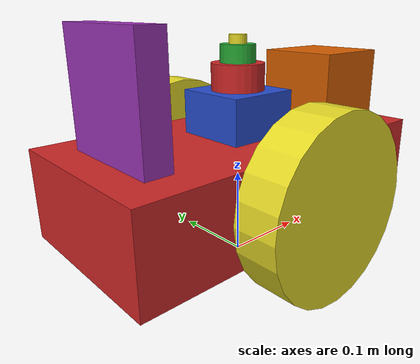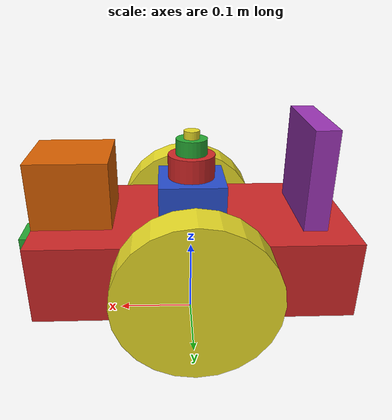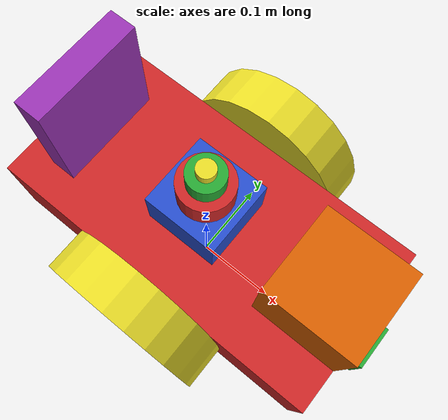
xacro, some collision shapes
<?xml version='1.0'?>

<robot name="my_robot" xmlns:xacro="http://www.ros.org/wiki/xacro">
  <xacro:include filename="$(find my_robot)/urdf/my_robot.gazebo" />

  <link name="robot_footprint"></link>

  <joint name="robot_footprint_joint" type="fixed">
    <origin xyz="0 0 0" rpy="0 0 0" />
    <parent link="robot_footprint"/>
    <child link="chassis" />
  </joint>

  <link name='chassis'>
    <pose>0 0 0.1 0 0 0</pose>

    <inertial>
      <mass value="15.0"/>
      <origin xyz="0.0 0 0.1" rpy=" 0 0 0"/>
      <inertia
          ixx="0.1" ixy="0" ixz="0"
          iyy="0.1" iyz="0"
          izz="0.1"
      />
    </inertial>

    <collision name='collision'>
      <origin xyz="0 0 0.1" rpy=" 0 0 0"/>
      <geometry>
        <box size=".4 .2 .1"/>
      </geometry>
    </collision>

    <visual name='chassis_visual'>
      <origin xyz="0 0 0.1" rpy=" 0 0 0"/>
      <geometry>
        <box size=".4 .2 .1"/>
      </geometry>
    </visual>

    <collision name='back_caster_collision'>
      <origin xyz="-0.125 0 0.05" rpy=" 0 0 0"/>
      <geometry>
        <sphere radius="0.0499"/>
      </geometry>
    </collision>

    <visual name='back_caster_visual'>
      <origin xyz="-0.125 0 0.05" rpy=" 0 0 0"/>
      <geometry>
        <sphere radius="0.05"/>
      </geometry>
    </visual>

    <collision name='front_caster_collision'>
      <origin xyz="0.125 0 0.05" rpy=" 0 0 0"/>
      <geometry>
        <sphere radius="0.0499"/>
      </geometry>
    </collision>

    <visual name='front_caster_visual'>
      <origin xyz="0.125 0 0.05" rpy=" 0 0 0"/>
      <geometry>
        <sphere radius="0.05"/>
      </geometry>
    </visual>

  </link>

  <link name='left_wheel'>
    <pose>0 0 0 1.57 0 0</pose>

    <inertial>
      <mass value="5.0"/>
      <origin xyz="0 0 0" rpy=" 1.57 0 0"/>
      <inertia
          ixx="0.1" ixy="0" ixz="0"
          iyy="0.1" iyz="0"
          izz="0.1"
      />
    </inertial>

    <collision name='collision'>
      <origin xyz="0 0 0" rpy=" 1.57 0 0"/>
      <geometry>
        <cylinder radius="0.1" length="0.05"/>
      </geometry>
    </collision>

    <visual name='left_wheel_visual'>
      <origin xyz="0 0 0" rpy=" 1.57 0 0"/>
      <geometry>
        <cylinder radius="0.1" length="0.05"/>
      </geometry>
    </visual>

  </link>

  <link name='right_wheel'>
    <pose>0 0 0 1.57 0 0</pose>

    <inertial>
      <mass value="5.0"/>
      <origin xyz="0 0 0" rpy=" 1.57 0 0"/>
      <inertia
          ixx="0.1" ixy="0" ixz="0"
          iyy="0.1" iyz="0"
          izz="0.1"
      />
    </inertial>

    <collision name='collision'>
      <origin xyz="0 0 0" rpy=" 1.57 0 0"/>
      <geometry>
        <cylinder radius="0.1" length="0.05"/>
      </geometry>
    </collision>

    <visual name='right_wheel_visual'>
      <origin xyz="0 0 0" rpy=" 1.57 0 0"/>
      <geometry>
        <cylinder radius="0.1" length="0.05"/>
      </geometry>
    </visual>
  </link>

  <joint type="continuous" name="left_wheel_hinge">
    <origin xyz="0 -0.125 0.1" rpy="0 0 0"/>
    <child link="left_wheel"/>
    <parent link="chassis"/>
    <axis xyz="0 1 0" rpy="0 0 0"/>
    <limit effort="10000" velocity="1000"/>
    <dynamics damping="1.0" friction="1.0"/>
  </joint>

  <joint type="continuous" name="right_wheel_hinge">
    <origin xyz="0 0.125 0.1" rpy="0 0 0"/>
    <child link="right_wheel"/>
    <parent link="chassis"/>
    <axis xyz="0 1 0" rpy="0 0 0"/>
    <limit effort="10000" velocity="1000"/>
    <dynamics damping="1.0" friction="1.0"/>
  </joint>

  <link name='camera'>
    <pose>0 0 0 0 0 0</pose>

    <inertial>
      <mass value="0.1"/>
      <origin xyz="0 0 0" rpy=" 0 0 0"/>
      <inertia
          ixx="1e-6" ixy="0" ixz="0"
          iyy="1e-6" iyz="0"
          izz="1e-6"
      />
    </inertial>

    <collision name='collision'>
      <origin xyz="0 0 0" rpy=" 0 0 0"/>
      <geometry>
        <box size=".05 .05 .05"/>
      </geometry>
    </collision>

    <visual name='camera_visual'>
      <origin xyz="0 0 0" rpy=" 0 0 0"/>
      <geometry>
        <box size=".05 .05 .05"/>
      </geometry>
    </visual>

  </link>

  <joint type="fixed" name="camera_mount">
    <origin xyz="0.2 0 0.1" rpy="0 0 0"/>
    <child link="camera"/>
    <parent link="chassis"/>
    <axis xyz="0 1 0" rpy="0 0 0"/>
  </joint>

  <link name='hokuyo'>
    <pose>0 0 0 0 0 0</pose>

    <inertial>
      <mass value="1e-5"/>
      <origin xyz="0 0 0" rpy=" 0 0 0"/>
      <inertia
          ixx="1e-6" ixy="0" ixz="0"
          iyy="1e-6" iyz="0"
          izz="1e-6"
      />
    </inertial>

    <collision name='collision'>
      <origin xyz="0 0 0" rpy=" 0 0 0"/>
      <geometry>
        <box size=".1 .1 .1"/>
      </geometry>
    </collision>

    <visual name='camera_visual'>
      <origin xyz="0 0 0" rpy=" 0 0 0"/>
      <geometry>
        <mesh filename="package://my_robot/meshes/hokuyo.dae"/>
      </geometry>
    </visual>

  </link>

  <joint type="fixed" name="hokuyo_joint">
    <origin xyz="0.15 0 0.185" rpy="0 0 0"/>
    <child link="hokuyo"/>
    <parent link="chassis"/>
    <axis xyz="0 1 0" rpy="0 0 0"/>
  </joint>

  <link name='middle_box'>
    <pose>0 0 0 0 0 0</pose>

    <inertial>
      <mass value="0.1"/>
      <origin xyz="0 0 0" rpy=" 0 0 0"/>
      <inertia
          ixx="1e-6" ixy="0" ixz="0"
          iyy="1e-6" iyz="0"
          izz="1e-6"
      />
    </inertial>

    <collision name='collision'>
      <origin xyz="0 0 0" rpy=" 0 0 0"/>
      <geometry>
        <box size=".085 .085 .05"/>
      </geometry>
    </collision>

    <visual name='middle_box_visual'>
      <origin xyz="0 0 0" rpy=" 0 0 0"/>
      <geometry>
        <box size=".085 .085 .05"/>
      </geometry>
    </visual>
  </link>

  <joint type="fixed" name="middle_box_mount">
    <origin xyz="0 0 0.175" rpy="0 0 0"/>
    <child link="middle_box"/>
    <parent link="chassis"/>
    <axis xyz="0 1 0" rpy="0 0 0"/>
  </joint>

  <link name='rear_box'>
    <pose>0 0 0 0 0 0</pose>

    <inertial>
      <mass value="0.1"/>
      <origin xyz="0 0 0" rpy=" 0 0 0"/>
      <inertia
          ixx="1e-6" ixy="0" ixz="0"
          iyy="1e-6" iyz="0"
          izz="1e-6"
      />
    </inertial>

    <collision name='collision'>
      <origin xyz="0 0 0" rpy=" 0 0 0"/>
      <geometry>
        <box size=".03 .125 .15"/>
      </geometry>
    </collision>

    <visual name='rear_box_visual'>
      <origin xyz="0 0 0" rpy=" 0 0 0"/>
      <geometry>
        <box size=".03 .125 .15"/>
      </geometry>
    </visual>
  </link>

  <joint type="fixed" name="rear_box_mount">
    <origin xyz="-0.15 0 0.2" rpy="0 0 0"/>
    <child link="rear_box"/>
    <parent link="chassis"/>
    <axis xyz="0 1 0" rpy="0 0 0"/>
  </joint>

  <link name='middle_lower_cylinder'>
    <pose>0 0 0 0 0 0</pose>

    <inertial>
      <mass value="0.1"/>
      <origin xyz="0 0 0" rpy=" 0 0 0"/>
      <inertia
          ixx="1e-6" ixy="0" ixz="0"
          iyy="1e-6" iyz="0"
          izz="1e-6"
      />
    </inertial>

    <collision name='collision'>
      <origin xyz="0 0 0" rpy=" 0 0 0"/>
      <geometry>
        <cylinder radius="0.03" length="0.03"/>
      </geometry>
    </collision>

    <visual name='middle_lower_cylinder_visual'>
      <origin xyz="0 0 0" rpy=" 0 0 0"/>
      <geometry>
        <cylinder radius="0.03" length="0.03"/>
      </geometry>
    </visual>
  </link>

  <joint type="fixed" name="middle_lower_cylinder_mount">
    <origin xyz="0 0 0.215" rpy="0 0 0"/>
    <child link="middle_lower_cylinder"/>
    <parent link="chassis"/>
    <axis xyz="0 1 0" rpy="0 0 0"/>
  </joint>

  <link name='middle_upper_cylinder'>
    <pose>0 0 0 0 0 0</pose>

    <inertial>
      <mass value="0.1"/>
      <origin xyz="0 0 0" rpy=" 0 0 0"/>
      <inertia
          ixx="1e-6" ixy="0" ixz="0"
          iyy="1e-6" iyz="0"
          izz="1e-6"
      />
    </inertial>

    <collision name='collision'>
      <origin xyz="0 0 0" rpy=" 0 0 0"/>
      <geometry>
        <cylinder radius="0.02" length="0.02"/>
      </geometry>
    </collision>

    <visual name='middle_upper_cylinder_visual'>
      <origin xyz="0 0 0" rpy=" 0 0 0"/>
      <geometry>
        <cylinder radius="0.02" length="0.02"/>
      </geometry>
    </visual>
  </link>

  <joint type="fixed" name="middle_upper_cylinder_mount">
    <origin xyz="0 0 0.24" rpy="0 0 0"/>
    <child link="middle_upper_cylinder"/>
    <parent link="chassis"/>
    <axis xyz="0 1 0" rpy="0 0 0"/>
  </joint>

  <link name='middle_top_cylinder'>
    <pose>0 0 0 0 0 0</pose>

    <inertial>
      <mass value="0.1"/>
      <origin xyz="0 0 0" rpy=" 0 0 0"/>
      <inertia
          ixx="1e-6" ixy="0" ixz="0"
          iyy="1e-6" iyz="0"
          izz="1e-6"
      />
    </inertial>

    <collision name='collision'>
      <origin xyz="0 0 0" rpy=" 0 0 0"/>
      <geometry>
        <cylinder radius="0.01" length="0.01"/>
      </geometry>
    </collision>

    <visual name='middle_top_cylinder_visual'>
      <origin xyz="0 0 0" rpy=" 0 0 0"/>
      <geometry>
        <cylinder radius="0.01" length="0.01"/>
      </geometry>
    </visual>
  </link>

  <joint type="fixed" name="middle_top_cylinder_mount">
    <origin xyz="0 0 0.255" rpy="0 0 0"/>
    <child link="middle_top_cylinder"/>
    <parent link="chassis"/>
    <axis xyz="0 1 0" rpy="0 0 0"/>
  </joint>

  <!-- http://answers.gazebosim.org/question/15174/where-can-i-find-list-of-available-colours-for-gazebo/ -->
  <gazebo reference="left_wheel">
    <material>Gazebo/Yellow</material>
  </gazebo>

  <gazebo reference="right_wheel">
    <material>Gazebo/Yellow</material>
  </gazebo>

  <gazebo reference="chassis">
    <material>Gazebo/Red</material>
  </gazebo>

  <gazebo reference="rear_box">
    <material>Gazebo/Purple</material>
  </gazebo>

  <gazebo reference="middle_box">
    <material>Gazebo/Blue</material>
  </gazebo>

  <gazebo reference="middle_lower_cylinder">
    <material>Gazebo/Red</material>
  </gazebo>

  <gazebo reference="middle_upper_cylinder">
    <material>Gazebo/Green</material>
  </gazebo>

  <gazebo reference="middle_top_cylinder">
    <material>Gazebo/Yellow</material>
  </gazebo>

  <gazebo reference="camera">
    <material>Gazebo/Green</material>
  </gazebo>

</robot>
